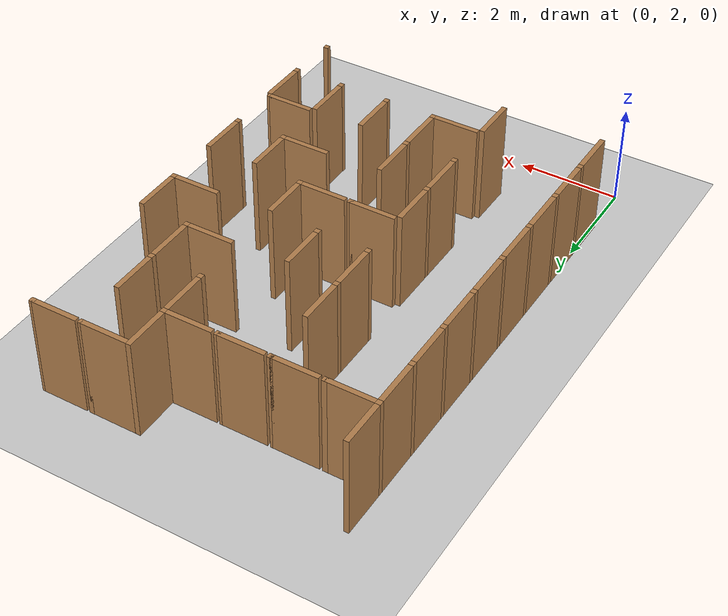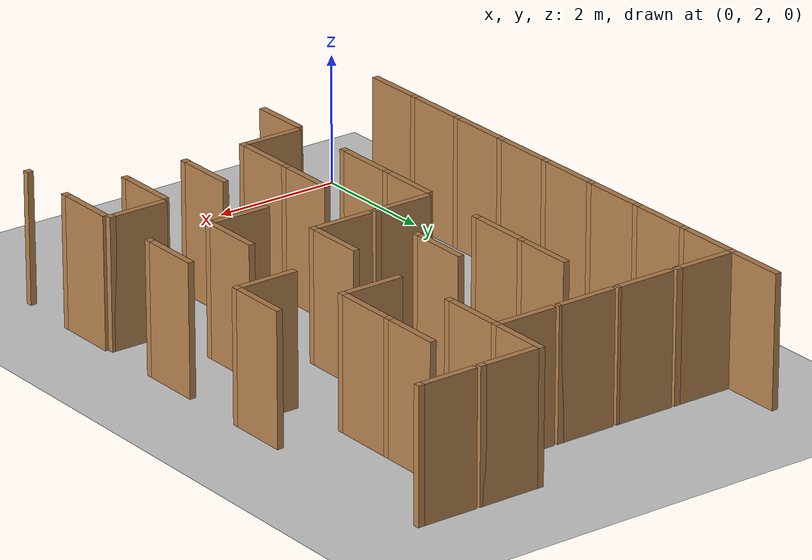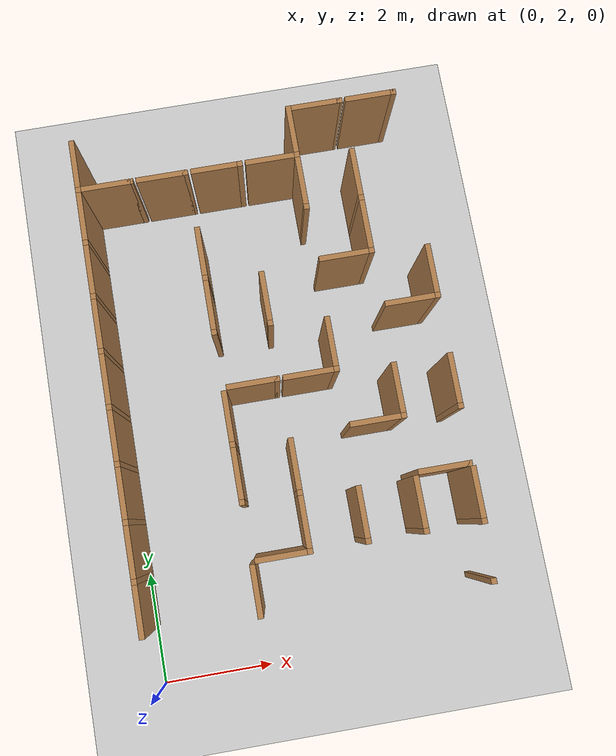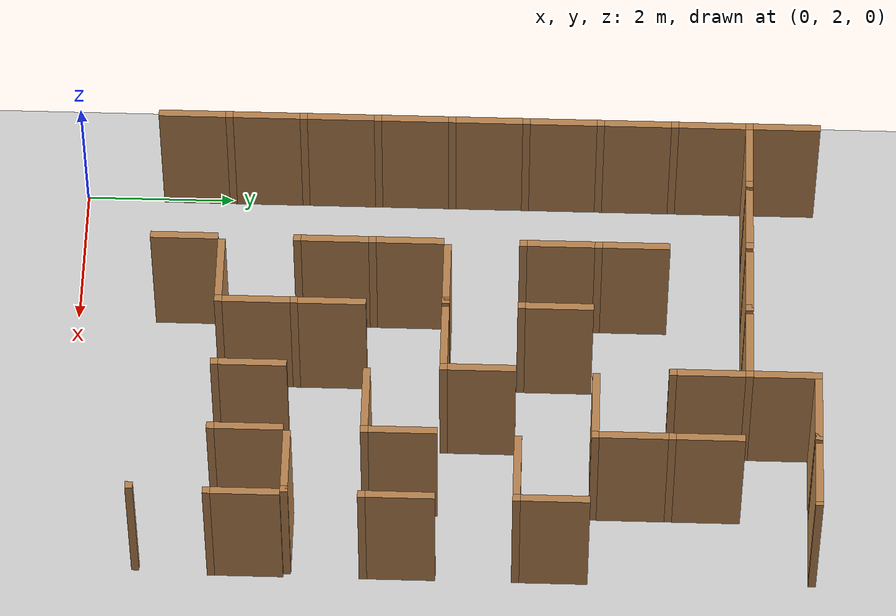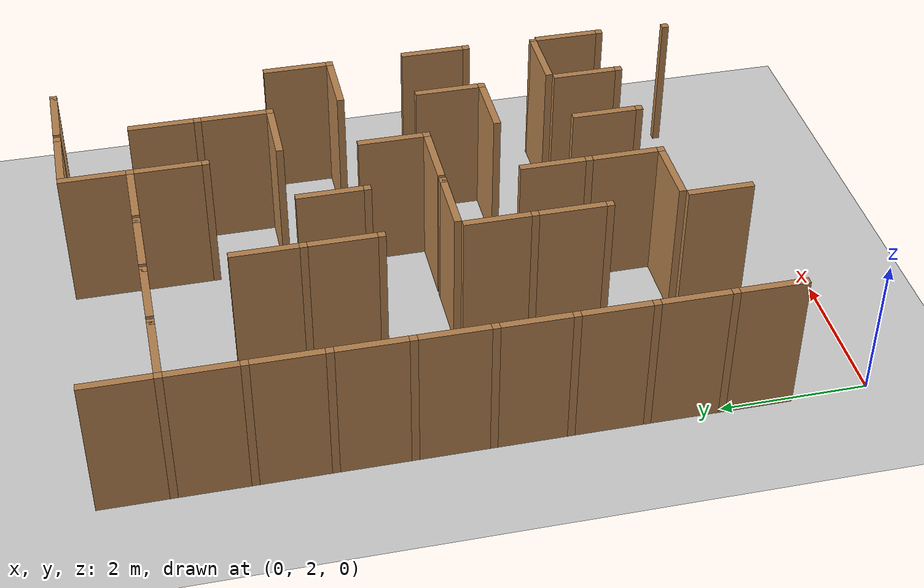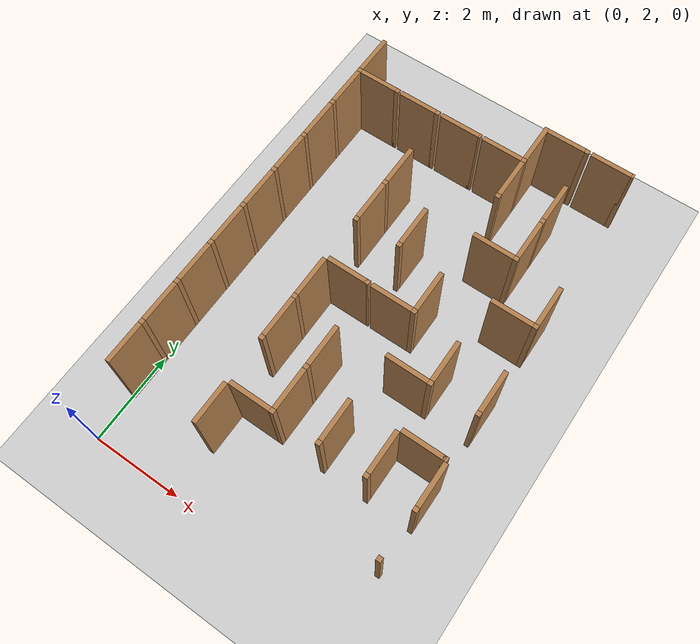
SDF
<sdf version="1.6">
 <world name="default">
  <include><uri>model://sun</uri></include>
  <model name="ground_plane">
   <static>true</static>
   <link name="link">
    <collision name="collision"><geometry><plane><size>12.0 12.0</size></plane></geometry></collision>
    <visual name="visual">
     <cast_shadows>false</cast_shadows>
     <geometry><plane><size>12.0 12.0</size></plane></geometry>
     <material>
      <script><uri>file://media/materials/scripts/gazebo.material</uri><name>Gazebo/Grey</name></script>
     </material>
    </visual>
   </link>
   <pose>6.0 6.0 0 0 0 0</pose>
  </model>
  <model name="vwall_3_0">
   <pose>0.0 3.5 1.0 0 0 0</pose>
   <link name="link">
    <collision name="collision"><geometry><box><size>0.1 0.9 2</size></box></geometry></collision>
    <visual name="visual">
     <geometry><box><size>0.1 0.9 2</size></box></geometry>
     <material>
      <script><uri>file://media/materials/scripts/gazebo.material</uri><name>Gazebo/Wood</name></script>
     </material>
    </visual>
   </link>
  </model>
  <model name="vwall_3_2">
   <pose>2.0 3.5 1.0 0 0 0</pose>
   <link name="link">
    <collision name="collision"><geometry><box><size>0.1 0.9 2</size></box></geometry></collision>
    <visual name="visual">
     <geometry><box><size>0.1 0.9 2</size></box></geometry>
     <material>
      <script><uri>file://media/materials/scripts/gazebo.material</uri><name>Gazebo/Wood</name></script>
     </material>
    </visual>
   </link>
  </model>
  <model name="vwall_4_0">
   <pose>0.0 4.5 1.0 0 0 0</pose>
   <link name="link">
    <collision name="collision"><geometry><box><size>0.1 0.9 2</size></box></geometry></collision>
    <visual name="visual">
     <geometry><box><size>0.1 0.9 2</size></box></geometry>
     <material>
      <script><uri>file://media/materials/scripts/gazebo.material</uri><name>Gazebo/Wood</name></script>
     </material>
    </visual>
   </link>
  </model>
  <model name="joint_0.0_4.0">
   <pose>0.0 4.0 1.0 0 0 0</pose>
   <link name="link">
    <collision name="collision"><geometry><box><size>0.1 0.1 2</size></box></geometry></collision>
    <visual name="visual">
     <geometry><box><size>0.1 0.1 2</size></box></geometry>
     <material>
      <script><uri>file://media/materials/scripts/gazebo.material</uri><name>Gazebo/Wood</name></script>
     </material>
    </visual>
   </link>
  </model>
  <model name="vwall_4_3">
   <pose>3.0 4.5 1.0 0 0 0</pose>
   <link name="link">
    <collision name="collision"><geometry><box><size>0.1 0.9 2</size></box></geometry></collision>
    <visual name="visual">
     <geometry><box><size>0.1 0.9 2</size></box></geometry>
     <material>
      <script><uri>file://media/materials/scripts/gazebo.material</uri><name>Gazebo/Wood</name></script>
     </material>
    </visual>
   </link>
  </model>
  <model name="joint_3.0_4.0">
   <pose>3.0 4.0 1.0 0 0 0</pose>
   <link name="link">
    <collision name="collision"><geometry><box><size>0.1 0.1 2</size></box></geometry></collision>
    <visual name="visual">
     <geometry><box><size>0.1 0.1 2</size></box></geometry>
     <material>
      <script><uri>file://media/materials/scripts/gazebo.material</uri><name>Gazebo/Wood</name></script>
     </material>
    </visual>
   </link>
  </model>
  <model name="vwall_4_4">
   <pose>4.0 4.5 1.0 0 0 0</pose>
   <link name="link">
    <collision name="collision"><geometry><box><size>0.1 0.9 2</size></box></geometry></collision>
    <visual name="visual">
     <geometry><box><size>0.1 0.9 2</size></box></geometry>
     <material>
      <script><uri>file://media/materials/scripts/gazebo.material</uri><name>Gazebo/Wood</name></script>
     </material>
    </visual>
   </link>
  </model>
  <model name="joint_4.0_4.0">
   <pose>4.0 4.0 1.0 0 0 0</pose>
   <link name="link">
    <collision name="collision"><geometry><box><size>0.1 0.1 2</size></box></geometry></collision>
    <visual name="visual">
     <geometry><box><size>0.1 0.1 2</size></box></geometry>
     <material>
      <script><uri>file://media/materials/scripts/gazebo.material</uri><name>Gazebo/Wood</name></script>
     </material>
    </visual>
   </link>
  </model>
  <model name="vwall_4_5">
   <pose>5.0 4.5 1.0 0 0 0</pose>
   <link name="link">
    <collision name="collision"><geometry><box><size>0.1 0.9 2</size></box></geometry></collision>
    <visual name="visual">
     <geometry><box><size>0.1 0.9 2</size></box></geometry>
     <material>
      <script><uri>file://media/materials/scripts/gazebo.material</uri><name>Gazebo/Wood</name></script>
     </material>
    </visual>
   </link>
  </model>
  <model name="joint_5.0_4.0">
   <pose>5.0 4.0 1.0 0 0 0</pose>
   <link name="link">
    <collision name="collision"><geometry><box><size>0.1 0.1 2</size></box></geometry></collision>
    <visual name="visual">
     <geometry><box><size>0.1 0.1 2</size></box></geometry>
     <material>
      <script><uri>file://media/materials/scripts/gazebo.material</uri><name>Gazebo/Wood</name></script>
     </material>
    </visual>
   </link>
  </model>
  <model name="vwall_4_6">
   <pose>6.0 4.5 1.0 0 0 0</pose>
   <link name="link">
    <collision name="collision"><geometry><box><size>0.1 0.9 2</size></box></geometry></collision>
    <visual name="visual">
     <geometry><box><size>0.1 0.9 2</size></box></geometry>
     <material>
      <script><uri>file://media/materials/scripts/gazebo.material</uri><name>Gazebo/Wood</name></script>
     </material>
    </visual>
   </link>
  </model>
  <model name="joint_6.0_4.0">
   <pose>6.0 4.0 1.0 0 0 0</pose>
   <link name="link">
    <collision name="collision"><geometry><box><size>0.1 0.1 2</size></box></geometry></collision>
    <visual name="visual">
     <geometry><box><size>0.1 0.1 2</size></box></geometry>
     <material>
      <script><uri>file://media/materials/scripts/gazebo.material</uri><name>Gazebo/Wood</name></script>
     </material>
    </visual>
   </link>
  </model>
  <model name="vwall_5_0">
   <pose>0.0 5.5 1.0 0 0 0</pose>
   <link name="link">
    <collision name="collision"><geometry><box><size>0.1 0.9 2</size></box></geometry></collision>
    <visual name="visual">
     <geometry><box><size>0.1 0.9 2</size></box></geometry>
     <material>
      <script><uri>file://media/materials/scripts/gazebo.material</uri><name>Gazebo/Wood</name></script>
     </material>
    </visual>
   </link>
  </model>
  <model name="joint_0.0_5.0">
   <pose>0.0 5.0 1.0 0 0 0</pose>
   <link name="link">
    <collision name="collision"><geometry><box><size>0.1 0.1 2</size></box></geometry></collision>
    <visual name="visual">
     <geometry><box><size>0.1 0.1 2</size></box></geometry>
     <material>
      <script><uri>file://media/materials/scripts/gazebo.material</uri><name>Gazebo/Wood</name></script>
     </material>
    </visual>
   </link>
  </model>
  <model name="vwall_5_2">
   <pose>2.0 5.5 1.0 0 0 0</pose>
   <link name="link">
    <collision name="collision"><geometry><box><size>0.1 0.9 2</size></box></geometry></collision>
    <visual name="visual">
     <geometry><box><size>0.1 0.9 2</size></box></geometry>
     <material>
      <script><uri>file://media/materials/scripts/gazebo.material</uri><name>Gazebo/Wood</name></script>
     </material>
    </visual>
   </link>
  </model>
  <model name="joint_2.0_5.0">
   <pose>2.0 5.0 1.0 0 0 0</pose>
   <link name="link">
    <collision name="collision"><geometry><box><size>0.1 0.1 2</size></box></geometry></collision>
    <visual name="visual">
     <geometry><box><size>0.1 0.1 2</size></box></geometry>
     <material>
      <script><uri>file://media/materials/scripts/gazebo.material</uri><name>Gazebo/Wood</name></script>
     </material>
    </visual>
   </link>
  </model>
  <model name="vwall_5_3">
   <pose>3.0 5.5 1.0 0 0 0</pose>
   <link name="link">
    <collision name="collision"><geometry><box><size>0.1 0.9 2</size></box></geometry></collision>
    <visual name="visual">
     <geometry><box><size>0.1 0.9 2</size></box></geometry>
     <material>
      <script><uri>file://media/materials/scripts/gazebo.material</uri><name>Gazebo/Wood</name></script>
     </material>
    </visual>
   </link>
  </model>
  <model name="joint_3.0_5.0">
   <pose>3.0 5.0 1.0 0 0 0</pose>
   <link name="link">
    <collision name="collision"><geometry><box><size>0.1 0.1 2</size></box></geometry></collision>
    <visual name="visual">
     <geometry><box><size>0.1 0.1 2</size></box></geometry>
     <material>
      <script><uri>file://media/materials/scripts/gazebo.material</uri><name>Gazebo/Wood</name></script>
     </material>
    </visual>
   </link>
  </model>
  <model name="vwall_6_0">
   <pose>0.0 6.5 1.0 0 0 0</pose>
   <link name="link">
    <collision name="collision"><geometry><box><size>0.1 0.9 2</size></box></geometry></collision>
    <visual name="visual">
     <geometry><box><size>0.1 0.9 2</size></box></geometry>
     <material>
      <script><uri>file://media/materials/scripts/gazebo.material</uri><name>Gazebo/Wood</name></script>
     </material>
    </visual>
   </link>
  </model>
  <model name="joint_0.0_6.0">
   <pose>0.0 6.0 1.0 0 0 0</pose>
   <link name="link">
    <collision name="collision"><geometry><box><size>0.1 0.1 2</size></box></geometry></collision>
    <visual name="visual">
     <geometry><box><size>0.1 0.1 2</size></box></geometry>
     <material>
      <script><uri>file://media/materials/scripts/gazebo.material</uri><name>Gazebo/Wood</name></script>
     </material>
    </visual>
   </link>
  </model>
  <model name="vwall_6_2">
   <pose>2.0 6.5 1.0 0 0 0</pose>
   <link name="link">
    <collision name="collision"><geometry><box><size>0.1 0.9 2</size></box></geometry></collision>
    <visual name="visual">
     <geometry><box><size>0.1 0.9 2</size></box></geometry>
     <material>
      <script><uri>file://media/materials/scripts/gazebo.material</uri><name>Gazebo/Wood</name></script>
     </material>
    </visual>
   </link>
  </model>
  <model name="joint_2.0_6.0">
   <pose>2.0 6.0 1.0 0 0 0</pose>
   <link name="link">
    <collision name="collision"><geometry><box><size>0.1 0.1 2</size></box></geometry></collision>
    <visual name="visual">
     <geometry><box><size>0.1 0.1 2</size></box></geometry>
     <material>
      <script><uri>file://media/materials/scripts/gazebo.material</uri><name>Gazebo/Wood</name></script>
     </material>
    </visual>
   </link>
  </model>
  <model name="vwall_6_5">
   <pose>5.0 6.5 1.0 0 0 0</pose>
   <link name="link">
    <collision name="collision"><geometry><box><size>0.1 0.9 2</size></box></geometry></collision>
    <visual name="visual">
     <geometry><box><size>0.1 0.9 2</size></box></geometry>
     <material>
      <script><uri>file://media/materials/scripts/gazebo.material</uri><name>Gazebo/Wood</name></script>
     </material>
    </visual>
   </link>
  </model>
  <model name="joint_5.0_6.0">
   <pose>5.0 6.0 1.0 0 0 0</pose>
   <link name="link">
    <collision name="collision"><geometry><box><size>0.1 0.1 2</size></box></geometry></collision>
    <visual name="visual">
     <geometry><box><size>0.1 0.1 2</size></box></geometry>
     <material>
      <script><uri>file://media/materials/scripts/gazebo.material</uri><name>Gazebo/Wood</name></script>
     </material>
    </visual>
   </link>
  </model>
  <model name="vwall_6_6">
   <pose>6.0 6.5 1.0 0 0 0</pose>
   <link name="link">
    <collision name="collision"><geometry><box><size>0.1 0.9 2</size></box></geometry></collision>
    <visual name="visual">
     <geometry><box><size>0.1 0.9 2</size></box></geometry>
     <material>
      <script><uri>file://media/materials/scripts/gazebo.material</uri><name>Gazebo/Wood</name></script>
     </material>
    </visual>
   </link>
  </model>
  <model name="joint_6.0_6.0">
   <pose>6.0 6.0 1.0 0 0 0</pose>
   <link name="link">
    <collision name="collision"><geometry><box><size>0.1 0.1 2</size></box></geometry></collision>
    <visual name="visual">
     <geometry><box><size>0.1 0.1 2</size></box></geometry>
     <material>
      <script><uri>file://media/materials/scripts/gazebo.material</uri><name>Gazebo/Wood</name></script>
     </material>
    </visual>
   </link>
  </model>
  <model name="vwall_7_0">
   <pose>0.0 7.5 1.0 0 0 0</pose>
   <link name="link">
    <collision name="collision"><geometry><box><size>0.1 0.9 2</size></box></geometry></collision>
    <visual name="visual">
     <geometry><box><size>0.1 0.9 2</size></box></geometry>
     <material>
      <script><uri>file://media/materials/scripts/gazebo.material</uri><name>Gazebo/Wood</name></script>
     </material>
    </visual>
   </link>
  </model>
  <model name="joint_0.0_7.0">
   <pose>0.0 7.0 1.0 0 0 0</pose>
   <link name="link">
    <collision name="collision"><geometry><box><size>0.1 0.1 2</size></box></geometry></collision>
    <visual name="visual">
     <geometry><box><size>0.1 0.1 2</size></box></geometry>
     <material>
      <script><uri>file://media/materials/scripts/gazebo.material</uri><name>Gazebo/Wood</name></script>
     </material>
    </visual>
   </link>
  </model>
  <model name="vwall_7_4">
   <pose>4.0 7.5 1.0 0 0 0</pose>
   <link name="link">
    <collision name="collision"><geometry><box><size>0.1 0.9 2</size></box></geometry></collision>
    <visual name="visual">
     <geometry><box><size>0.1 0.9 2</size></box></geometry>
     <material>
      <script><uri>file://media/materials/scripts/gazebo.material</uri><name>Gazebo/Wood</name></script>
     </material>
    </visual>
   </link>
  </model>
  <model name="joint_4.0_7.0">
   <pose>4.0 7.0 1.0 0 0 0</pose>
   <link name="link">
    <collision name="collision"><geometry><box><size>0.1 0.1 2</size></box></geometry></collision>
    <visual name="visual">
     <geometry><box><size>0.1 0.1 2</size></box></geometry>
     <material>
      <script><uri>file://media/materials/scripts/gazebo.material</uri><name>Gazebo/Wood</name></script>
     </material>
    </visual>
   </link>
  </model>
  <model name="vwall_8_0">
   <pose>0.0 8.5 1.0 0 0 0</pose>
   <link name="link">
    <collision name="collision"><geometry><box><size>0.1 0.9 2</size></box></geometry></collision>
    <visual name="visual">
     <geometry><box><size>0.1 0.9 2</size></box></geometry>
     <material>
      <script><uri>file://media/materials/scripts/gazebo.material</uri><name>Gazebo/Wood</name></script>
     </material>
    </visual>
   </link>
  </model>
  <model name="joint_0.0_8.0">
   <pose>0.0 8.0 1.0 0 0 0</pose>
   <link name="link">
    <collision name="collision"><geometry><box><size>0.1 0.1 2</size></box></geometry></collision>
    <visual name="visual">
     <geometry><box><size>0.1 0.1 2</size></box></geometry>
     <material>
      <script><uri>file://media/materials/scripts/gazebo.material</uri><name>Gazebo/Wood</name></script>
     </material>
    </visual>
   </link>
  </model>
  <model name="vwall_8_2">
   <pose>2.0 8.5 1.0 0 0 0</pose>
   <link name="link">
    <collision name="collision"><geometry><box><size>0.1 0.9 2</size></box></geometry></collision>
    <visual name="visual">
     <geometry><box><size>0.1 0.9 2</size></box></geometry>
     <material>
      <script><uri>file://media/materials/scripts/gazebo.material</uri><name>Gazebo/Wood</name></script>
     </material>
    </visual>
   </link>
  </model>
  <model name="joint_2.0_8.0">
   <pose>2.0 8.0 1.0 0 0 0</pose>
   <link name="link">
    <collision name="collision"><geometry><box><size>0.1 0.1 2</size></box></geometry></collision>
    <visual name="visual">
     <geometry><box><size>0.1 0.1 2</size></box></geometry>
     <material>
      <script><uri>file://media/materials/scripts/gazebo.material</uri><name>Gazebo/Wood</name></script>
     </material>
    </visual>
   </link>
  </model>
  <model name="vwall_8_3">
   <pose>3.0 8.5 1.0 0 0 0</pose>
   <link name="link">
    <collision name="collision"><geometry><box><size>0.1 0.9 2</size></box></geometry></collision>
    <visual name="visual">
     <geometry><box><size>0.1 0.9 2</size></box></geometry>
     <material>
      <script><uri>file://media/materials/scripts/gazebo.material</uri><name>Gazebo/Wood</name></script>
     </material>
    </visual>
   </link>
  </model>
  <model name="joint_3.0_8.0">
   <pose>3.0 8.0 1.0 0 0 0</pose>
   <link name="link">
    <collision name="collision"><geometry><box><size>0.1 0.1 2</size></box></geometry></collision>
    <visual name="visual">
     <geometry><box><size>0.1 0.1 2</size></box></geometry>
     <material>
      <script><uri>file://media/materials/scripts/gazebo.material</uri><name>Gazebo/Wood</name></script>
     </material>
    </visual>
   </link>
  </model>
  <model name="vwall_8_6">
   <pose>6.0 8.5 1.0 0 0 0</pose>
   <link name="link">
    <collision name="collision"><geometry><box><size>0.1 0.9 2</size></box></geometry></collision>
    <visual name="visual">
     <geometry><box><size>0.1 0.9 2</size></box></geometry>
     <material>
      <script><uri>file://media/materials/scripts/gazebo.material</uri><name>Gazebo/Wood</name></script>
     </material>
    </visual>
   </link>
  </model>
  <model name="joint_6.0_8.0">
   <pose>6.0 8.0 1.0 0 0 0</pose>
   <link name="link">
    <collision name="collision"><geometry><box><size>0.1 0.1 2</size></box></geometry></collision>
    <visual name="visual">
     <geometry><box><size>0.1 0.1 2</size></box></geometry>
     <material>
      <script><uri>file://media/materials/scripts/gazebo.material</uri><name>Gazebo/Wood</name></script>
     </material>
    </visual>
   </link>
  </model>
  <model name="vwall_9_0">
   <pose>0.0 9.5 1.0 0 0 0</pose>
   <link name="link">
    <collision name="collision"><geometry><box><size>0.1 0.9 2</size></box></geometry></collision>
    <visual name="visual">
     <geometry><box><size>0.1 0.9 2</size></box></geometry>
     <material>
      <script><uri>file://media/materials/scripts/gazebo.material</uri><name>Gazebo/Wood</name></script>
     </material>
    </visual>
   </link>
  </model>
  <model name="joint_0.0_9.0">
   <pose>0.0 9.0 1.0 0 0 0</pose>
   <link name="link">
    <collision name="collision"><geometry><box><size>0.1 0.1 2</size></box></geometry></collision>
    <visual name="visual">
     <geometry><box><size>0.1 0.1 2</size></box></geometry>
     <material>
      <script><uri>file://media/materials/scripts/gazebo.material</uri><name>Gazebo/Wood</name></script>
     </material>
    </visual>
   </link>
  </model>
  <model name="vwall_9_2">
   <pose>2.0 9.5 1.0 0 0 0</pose>
   <link name="link">
    <collision name="collision"><geometry><box><size>0.1 0.9 2</size></box></geometry></collision>
    <visual name="visual">
     <geometry><box><size>0.1 0.9 2</size></box></geometry>
     <material>
      <script><uri>file://media/materials/scripts/gazebo.material</uri><name>Gazebo/Wood</name></script>
     </material>
    </visual>
   </link>
  </model>
  <model name="joint_2.0_9.0">
   <pose>2.0 9.0 1.0 0 0 0</pose>
   <link name="link">
    <collision name="collision"><geometry><box><size>0.1 0.1 2</size></box></geometry></collision>
    <visual name="visual">
     <geometry><box><size>0.1 0.1 2</size></box></geometry>
     <material>
      <script><uri>file://media/materials/scripts/gazebo.material</uri><name>Gazebo/Wood</name></script>
     </material>
    </visual>
   </link>
  </model>
  <model name="vwall_9_5">
   <pose>5.0 9.5 1.0 0 0 0</pose>
   <link name="link">
    <collision name="collision"><geometry><box><size>0.1 0.9 2</size></box></geometry></collision>
    <visual name="visual">
     <geometry><box><size>0.1 0.9 2</size></box></geometry>
     <material>
      <script><uri>file://media/materials/scripts/gazebo.material</uri><name>Gazebo/Wood</name></script>
     </material>
    </visual>
   </link>
  </model>
  <model name="joint_5.0_9.0">
   <pose>5.0 9.0 1.0 0 0 0</pose>
   <link name="link">
    <collision name="collision"><geometry><box><size>0.1 0.1 2</size></box></geometry></collision>
    <visual name="visual">
     <geometry><box><size>0.1 0.1 2</size></box></geometry>
     <material>
      <script><uri>file://media/materials/scripts/gazebo.material</uri><name>Gazebo/Wood</name></script>
     </material>
    </visual>
   </link>
  </model>
  <model name="vwall_10_0">
   <pose>0.0 10.5 1.0 0 0 0</pose>
   <link name="link">
    <collision name="collision"><geometry><box><size>0.1 0.9 2</size></box></geometry></collision>
    <visual name="visual">
     <geometry><box><size>0.1 0.9 2</size></box></geometry>
     <material>
      <script><uri>file://media/materials/scripts/gazebo.material</uri><name>Gazebo/Wood</name></script>
     </material>
    </visual>
   </link>
  </model>
  <model name="joint_0.0_10.0">
   <pose>0.0 10.0 1.0 0 0 0</pose>
   <link name="link">
    <collision name="collision"><geometry><box><size>0.1 0.1 2</size></box></geometry></collision>
    <visual name="visual">
     <geometry><box><size>0.1 0.1 2</size></box></geometry>
     <material>
      <script><uri>file://media/materials/scripts/gazebo.material</uri><name>Gazebo/Wood</name></script>
     </material>
    </visual>
   </link>
  </model>
  <model name="vwall_10_4">
   <pose>4.0 10.5 1.0 0 0 0</pose>
   <link name="link">
    <collision name="collision"><geometry><box><size>0.1 0.9 2</size></box></geometry></collision>
    <visual name="visual">
     <geometry><box><size>0.1 0.9 2</size></box></geometry>
     <material>
      <script><uri>file://media/materials/scripts/gazebo.material</uri><name>Gazebo/Wood</name></script>
     </material>
    </visual>
   </link>
  </model>
  <model name="joint_4.0_10.0">
   <pose>4.0 10.0 1.0 0 0 0</pose>
   <link name="link">
    <collision name="collision"><geometry><box><size>0.1 0.1 2</size></box></geometry></collision>
    <visual name="visual">
     <geometry><box><size>0.1 0.1 2</size></box></geometry>
     <material>
      <script><uri>file://media/materials/scripts/gazebo.material</uri><name>Gazebo/Wood</name></script>
     </material>
    </visual>
   </link>
  </model>
  <model name="vwall_10_5">
   <pose>5.0 10.5 1.0 0 0 0</pose>
   <link name="link">
    <collision name="collision"><geometry><box><size>0.1 0.9 2</size></box></geometry></collision>
    <visual name="visual">
     <geometry><box><size>0.1 0.9 2</size></box></geometry>
     <material>
      <script><uri>file://media/materials/scripts/gazebo.material</uri><name>Gazebo/Wood</name></script>
     </material>
    </visual>
   </link>
  </model>
  <model name="joint_5.0_10.0">
   <pose>5.0 10.0 1.0 0 0 0</pose>
   <link name="link">
    <collision name="collision"><geometry><box><size>0.1 0.1 2</size></box></geometry></collision>
    <visual name="visual">
     <geometry><box><size>0.1 0.1 2</size></box></geometry>
     <material>
      <script><uri>file://media/materials/scripts/gazebo.material</uri><name>Gazebo/Wood</name></script>
     </material>
    </visual>
   </link>
  </model>
  <model name="vwall_11_0">
   <pose>0.0 11.5 1.0 0 0 0</pose>
   <link name="link">
    <collision name="collision"><geometry><box><size>0.1 0.9 2</size></box></geometry></collision>
    <visual name="visual">
     <geometry><box><size>0.1 0.9 2</size></box></geometry>
     <material>
      <script><uri>file://media/materials/scripts/gazebo.material</uri><name>Gazebo/Wood</name></script>
     </material>
    </visual>
   </link>
  </model>
  <model name="joint_0.0_11.0">
   <pose>0.0 11.0 1.0 0 0 0</pose>
   <link name="link">
    <collision name="collision"><geometry><box><size>0.1 0.1 2</size></box></geometry></collision>
    <visual name="visual">
     <geometry><box><size>0.1 0.1 2</size></box></geometry>
     <material>
      <script><uri>file://media/materials/scripts/gazebo.material</uri><name>Gazebo/Wood</name></script>
     </material>
    </visual>
   </link>
  </model>
  <model name="vwall_11_4">
   <pose>4.0 11.5 1.0 0 0 0</pose>
   <link name="link">
    <collision name="collision"><geometry><box><size>0.1 0.9 2</size></box></geometry></collision>
    <visual name="visual">
     <geometry><box><size>0.1 0.9 2</size></box></geometry>
     <material>
      <script><uri>file://media/materials/scripts/gazebo.material</uri><name>Gazebo/Wood</name></script>
     </material>
    </visual>
   </link>
  </model>
  <model name="joint_4.0_11.0">
   <pose>4.0 11.0 1.0 0 0 0</pose>
   <link name="link">
    <collision name="collision"><geometry><box><size>0.1 0.1 2</size></box></geometry></collision>
    <visual name="visual">
     <geometry><box><size>0.1 0.1 2</size></box></geometry>
     <material>
      <script><uri>file://media/materials/scripts/gazebo.material</uri><name>Gazebo/Wood</name></script>
     </material>
    </visual>
   </link>
  </model>
  <model name="joint_5.95_3.0">
   <pose>5.95 3.0 1.0 0 0 0</pose>
   <link name="link">
    <collision name="collision"><geometry><box><size>0.1 0.1 2</size></box></geometry></collision>
    <visual name="visual">
     <geometry><box><size>0.1 0.1 2</size></box></geometry>
     <material>
      <script><uri>file://media/materials/scripts/gazebo.material</uri><name>Gazebo/Wood</name></script>
     </material>
    </visual>
   </link>
  </model>
  <model name="hwall_4_2">
   <pose>2.5 4.0 1.0 0 0 0</pose>
   <link name="link">
    <collision name="collision"><geometry><box><size>0.9 0.1 2</size></box></geometry></collision>
    <visual name="visual">
     <geometry><box><size>0.9 0.1 2</size></box></geometry>
     <material>
      <script><uri>file://media/materials/scripts/gazebo.material</uri><name>Gazebo/Wood</name></script>
     </material>
    </visual>
   </link>
  </model>
  <model name="hwall_5_5">
   <pose>5.5 5.0 1.0 0 0 0</pose>
   <link name="link">
    <collision name="collision"><geometry><box><size>0.9 0.1 2</size></box></geometry></collision>
    <visual name="visual">
     <geometry><box><size>0.9 0.1 2</size></box></geometry>
     <material>
      <script><uri>file://media/materials/scripts/gazebo.material</uri><name>Gazebo/Wood</name></script>
     </material>
    </visual>
   </link>
  </model>
  <model name="joint_5.95_5.0">
   <pose>5.95 5.0 1.0 0 0 0</pose>
   <link name="link">
    <collision name="collision"><geometry><box><size>0.1 0.1 2</size></box></geometry></collision>
    <visual name="visual">
     <geometry><box><size>0.1 0.1 2</size></box></geometry>
     <material>
      <script><uri>file://media/materials/scripts/gazebo.material</uri><name>Gazebo/Wood</name></script>
     </material>
    </visual>
   </link>
  </model>
  <model name="hwall_6_4">
   <pose>4.5 6.0 1.0 0 0 0</pose>
   <link name="link">
    <collision name="collision"><geometry><box><size>0.9 0.1 2</size></box></geometry></collision>
    <visual name="visual">
     <geometry><box><size>0.9 0.1 2</size></box></geometry>
     <material>
      <script><uri>file://media/materials/scripts/gazebo.material</uri><name>Gazebo/Wood</name></script>
     </material>
    </visual>
   </link>
  </model>
  <model name="hwall_7_2">
   <pose>2.5 7.0 1.0 0 0 0</pose>
   <link name="link">
    <collision name="collision"><geometry><box><size>0.9 0.1 2</size></box></geometry></collision>
    <visual name="visual">
     <geometry><box><size>0.9 0.1 2</size></box></geometry>
     <material>
      <script><uri>file://media/materials/scripts/gazebo.material</uri><name>Gazebo/Wood</name></script>
     </material>
    </visual>
   </link>
  </model>
  <model name="joint_2.95_7.0">
   <pose>2.95 7.0 1.0 0 0 0</pose>
   <link name="link">
    <collision name="collision"><geometry><box><size>0.1 0.1 2</size></box></geometry></collision>
    <visual name="visual">
     <geometry><box><size>0.1 0.1 2</size></box></geometry>
     <material>
      <script><uri>file://media/materials/scripts/gazebo.material</uri><name>Gazebo/Wood</name></script>
     </material>
    </visual>
   </link>
  </model>
  <model name="hwall_7_3">
   <pose>3.5 7.0 1.0 0 0 0</pose>
   <link name="link">
    <collision name="collision"><geometry><box><size>0.9 0.1 2</size></box></geometry></collision>
    <visual name="visual">
     <geometry><box><size>0.9 0.1 2</size></box></geometry>
     <material>
      <script><uri>file://media/materials/scripts/gazebo.material</uri><name>Gazebo/Wood</name></script>
     </material>
    </visual>
   </link>
  </model>
  <model name="hwall_8_5">
   <pose>5.5 8.0 1.0 0 0 0</pose>
   <link name="link">
    <collision name="collision"><geometry><box><size>0.9 0.1 2</size></box></geometry></collision>
    <visual name="visual">
     <geometry><box><size>0.9 0.1 2</size></box></geometry>
     <material>
      <script><uri>file://media/materials/scripts/gazebo.material</uri><name>Gazebo/Wood</name></script>
     </material>
    </visual>
   </link>
  </model>
  <model name="hwall_9_4">
   <pose>4.5 9.0 1.0 0 0 0</pose>
   <link name="link">
    <collision name="collision"><geometry><box><size>0.9 0.1 2</size></box></geometry></collision>
    <visual name="visual">
     <geometry><box><size>0.9 0.1 2</size></box></geometry>
     <material>
      <script><uri>file://media/materials/scripts/gazebo.material</uri><name>Gazebo/Wood</name></script>
     </material>
    </visual>
   </link>
  </model>
  <model name="hwall_11_0">
   <pose>0.5 11.0 1.0 0 0 0</pose>
   <link name="link">
    <collision name="collision"><geometry><box><size>0.9 0.1 2</size></box></geometry></collision>
    <visual name="visual">
     <geometry><box><size>0.9 0.1 2</size></box></geometry>
     <material>
      <script><uri>file://media/materials/scripts/gazebo.material</uri><name>Gazebo/Wood</name></script>
     </material>
    </visual>
   </link>
  </model>
  <model name="joint_0.95_11.0">
   <pose>0.95 11.0 1.0 0 0 0</pose>
   <link name="link">
    <collision name="collision"><geometry><box><size>0.1 0.1 2</size></box></geometry></collision>
    <visual name="visual">
     <geometry><box><size>0.1 0.1 2</size></box></geometry>
     <material>
      <script><uri>file://media/materials/scripts/gazebo.material</uri><name>Gazebo/Wood</name></script>
     </material>
    </visual>
   </link>
  </model>
  <model name="hwall_11_1">
   <pose>1.5 11.0 1.0 0 0 0</pose>
   <link name="link">
    <collision name="collision"><geometry><box><size>0.9 0.1 2</size></box></geometry></collision>
    <visual name="visual">
     <geometry><box><size>0.9 0.1 2</size></box></geometry>
     <material>
      <script><uri>file://media/materials/scripts/gazebo.material</uri><name>Gazebo/Wood</name></script>
     </material>
    </visual>
   </link>
  </model>
  <model name="joint_1.95_11.0">
   <pose>1.95 11.0 1.0 0 0 0</pose>
   <link name="link">
    <collision name="collision"><geometry><box><size>0.1 0.1 2</size></box></geometry></collision>
    <visual name="visual">
     <geometry><box><size>0.1 0.1 2</size></box></geometry>
     <material>
      <script><uri>file://media/materials/scripts/gazebo.material</uri><name>Gazebo/Wood</name></script>
     </material>
    </visual>
   </link>
  </model>
  <model name="hwall_11_2">
   <pose>2.5 11.0 1.0 0 0 0</pose>
   <link name="link">
    <collision name="collision"><geometry><box><size>0.9 0.1 2</size></box></geometry></collision>
    <visual name="visual">
     <geometry><box><size>0.9 0.1 2</size></box></geometry>
     <material>
      <script><uri>file://media/materials/scripts/gazebo.material</uri><name>Gazebo/Wood</name></script>
     </material>
    </visual>
   </link>
  </model>
  <model name="joint_2.95_11.0">
   <pose>2.95 11.0 1.0 0 0 0</pose>
   <link name="link">
    <collision name="collision"><geometry><box><size>0.1 0.1 2</size></box></geometry></collision>
    <visual name="visual">
     <geometry><box><size>0.1 0.1 2</size></box></geometry>
     <material>
      <script><uri>file://media/materials/scripts/gazebo.material</uri><name>Gazebo/Wood</name></script>
     </material>
    </visual>
   </link>
  </model>
  <model name="hwall_11_3">
   <pose>3.5 11.0 1.0 0 0 0</pose>
   <link name="link">
    <collision name="collision"><geometry><box><size>0.9 0.1 2</size></box></geometry></collision>
    <visual name="visual">
     <geometry><box><size>0.9 0.1 2</size></box></geometry>
     <material>
      <script><uri>file://media/materials/scripts/gazebo.material</uri><name>Gazebo/Wood</name></script>
     </material>
    </visual>
   </link>
  </model>
  <model name="hwall_11_4">
   <pose>4.5 11.9 1.0 0 0 0</pose>
   <link name="link">
    <collision name="collision"><geometry><box><size>0.9 0.1 2</size></box></geometry></collision>
    <visual name="visual">
     <geometry><box><size>0.9 0.1 2</size></box></geometry>
     <material>
      <script><uri>file://media/materials/scripts/gazebo.material</uri><name>Gazebo/Wood</name></script>
     </material>
    </visual>
   </link>
  </model>
  <model name="joint_4.95_11.9">
   <pose>4.95 11.9 1.0 0 0 0</pose>
   <link name="link">
    <collision name="collision"><geometry><box><size>0.1 0.1 2</size></box></geometry></collision>
    <visual name="visual">
     <geometry><box><size>0.1 0.1 2</size></box></geometry>
     <material>
      <script><uri>file://media/materials/scripts/gazebo.material</uri><name>Gazebo/Wood</name></script>
     </material>
    </visual>
   </link>
  </model>
  <model name="hwall_11_5">
   <pose>5.5 11.9 1.0 0 0 0</pose>
   <link name="link">
    <collision name="collision"><geometry><box><size>0.9 0.1 2</size></box></geometry></collision>
    <visual name="visual">
     <geometry><box><size>0.9 0.1 2</size></box></geometry>
     <material>
      <script><uri>file://media/materials/scripts/gazebo.material</uri><name>Gazebo/Wood</name></script>
     </material>
    </visual>
   </link>
  </model>
  <model name="joint_5.95_11.9">
   <pose>5.95 11.9 1.0 0 0 0</pose>
   <link name="link">
    <collision name="collision"><geometry><box><size>0.1 0.1 2</size></box></geometry></collision>
    <visual name="visual">
     <geometry><box><size>0.1 0.1 2</size></box></geometry>
     <material>
      <script><uri>file://media/materials/scripts/gazebo.material</uri><name>Gazebo/Wood</name></script>
     </material>
    </visual>
   </link>
  </model>
 </world>
</sdf>
